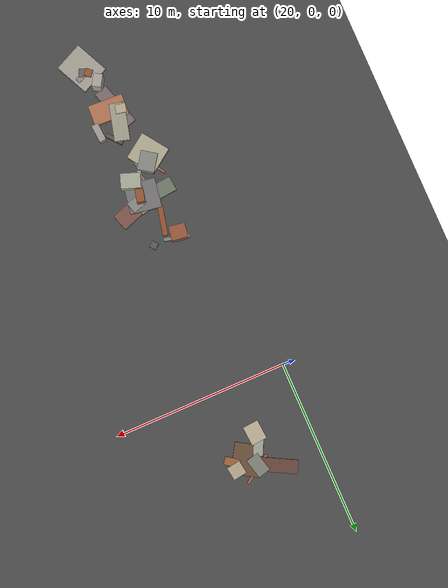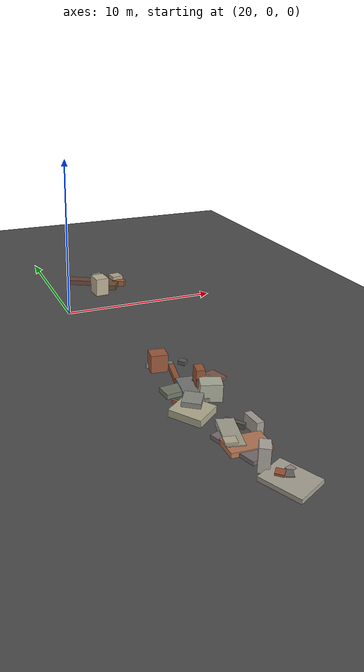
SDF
<sdf version="1.6">
 <world name="navitas_arena">
  <model name="ground_plane">
   <static>true</static>
   <link name="link">
    <collision name="collision">
     <geometry><plane><normal>0 0 1</normal><size>400 400</size></plane></geometry>
     <surface><friction><ode><mu>0.800</mu><mu2>0.800</mu2></ode></friction></surface>
    </collision>
    <visual name="visual">
     <cast_shadows>false</cast_shadows>
     <geometry><plane><normal>0 0 1</normal><size>400 400</size></plane></geometry>
     <material>
      <specular>0.04 0.04 0.04 1</specular>
      <script>
       <uri>file://media/materials/scripts/navitas_asphalt.material</uri>
       <name>Navitas/RealArenaAsphalt</name>
      </script>
     </material>
    </visual>
   </link>
  </model>
  <model name="deb_orta_39">
   <static>true</static>
   <pose>23.597 -12.655 0.000 0 0 0</pose>
   <link name="link">
    <collision name="col_0">
     <pose>0.428 0.245 0.134 0.000 0.000 2.014</pose>
     <geometry><box><size>0.477 0.325 0.269</size></box></geometry>
    </collision>
    <visual name="vis_0">
     <pose>0.428 0.245 0.134 0.000 0.000 2.014</pose>
     <geometry><box><size>0.477 0.325 0.269</size></box></geometry>
     <material>
      <ambient>0.51 0.51 0.46 1</ambient>
      <diffuse>0.55 0.55 0.49 1</diffuse>
      <specular>0.05 0.05 0.045 1</specular>
     </material>
    </visual>
    <collision name="col_1">
     <pose>0.248 0.438 0.072 0.000 0.000 1.306</pose>
     <geometry><box><size>1.709 0.137 0.143</size></box></geometry>
    </collision>
    <visual name="vis_1">
     <pose>0.248 0.438 0.072 0.000 0.000 1.306</pose>
     <geometry><box><size>1.709 0.137 0.143</size></box></geometry>
     <material>
      <ambient>0.57 0.54 0.50 1</ambient>
      <diffuse>0.61 0.58 0.54 1</diffuse>
      <specular>0.05 0.05 0.045 1</specular>
     </material>
    </visual>
    <collision name="col_2">
     <pose>-0.170 0.300 0.094 0.000 0.000 0.268</pose>
     <geometry><box><size>0.270 0.322 0.188</size></box></geometry>
    </collision>
    <visual name="vis_2">
     <pose>-0.170 0.300 0.094 0.000 0.000 0.268</pose>
     <geometry><box><size>0.270 0.322 0.188</size></box></geometry>
     <material>
      <ambient>0.60 0.58 0.57 1</ambient>
      <diffuse>0.65 0.63 0.62 1</diffuse>
      <specular>0.05 0.05 0.045 1</specular>
     </material>
    </visual>
    <collision name="col_3">
     <pose>0.114 -0.011 0.463 0.000 0.000 -0.344</pose>
     <geometry><box><size>1.122 0.852 0.926</size></box></geometry>
    </collision>
    <visual name="vis_3">
     <pose>0.114 -0.011 0.463 0.000 0.000 -0.344</pose>
     <geometry><box><size>1.122 0.852 0.926</size></box></geometry>
     <material>
      <ambient>0.62 0.63 0.56 1</ambient>
      <diffuse>0.67 0.68 0.61 1</diffuse>
      <specular>0.05 0.05 0.045 1</specular>
     </material>
    </visual>
    <collision name="col_4">
     <pose>0.326 -0.053 0.100 0.000 0.000 -0.215</pose>
     <geometry><box><size>0.267 0.334 0.199</size></box></geometry>
    </collision>
    <visual name="vis_4">
     <pose>0.326 -0.053 0.100 0.000 0.000 -0.215</pose>
     <geometry><box><size>0.267 0.334 0.199</size></box></geometry>
     <material>
      <ambient>0.54 0.53 0.50 1</ambient>
      <diffuse>0.59 0.57 0.54 1</diffuse>
      <specular>0.05 0.05 0.045 1</specular>
     </material>
    </visual>
    <collision name="col_5">
     <pose>-0.103 0.261 0.392 0.000 0.000 1.669</pose>
     <geometry><box><size>0.965 0.364 0.784</size></box></geometry>
    </collision>
    <visual name="vis_5">
     <pose>-0.103 0.261 0.392 0.000 0.000 1.669</pose>
     <geometry><box><size>0.965 0.364 0.784</size></box></geometry>
     <material>
      <ambient>0.58 0.33 0.22 1</ambient>
      <diffuse>0.63 0.36 0.24 1</diffuse>
      <specular>0.05 0.05 0.045 1</specular>
     </material>
    </visual>
    <collision name="col_6">
     <pose>-0.318 0.272 0.153 0.000 0.000 1.241</pose>
     <geometry><box><size>2.120 0.228 0.306</size></box></geometry>
    </collision>
    <visual name="vis_6">
     <pose>-0.318 0.272 0.153 0.000 0.000 1.241</pose>
     <geometry><box><size>2.120 0.228 0.306</size></box></geometry>
     <material>
      <ambient>0.63 0.59 0.57 1</ambient>
      <diffuse>0.68 0.63 0.61 1</diffuse>
      <specular>0.05 0.05 0.045 1</specular>
     </material>
    </visual>
   </link>
  </model>
  <model name="deb_orta_69">
   <static>true</static>
   <pose>23.229 -8.551 0.000 0 0 0</pose>
   <link name="link">
    <collision name="col_0">
     <pose>0.712 -0.380 0.112 0.000 0.000 2.244</pose>
     <geometry><box><size>0.399 0.384 0.225</size></box></geometry>
    </collision>
    <visual name="vis_0">
     <pose>0.712 -0.380 0.112 0.000 0.000 2.244</pose>
     <geometry><box><size>0.399 0.384 0.225</size></box></geometry>
     <material>
      <ambient>0.32 0.33 0.32 1</ambient>
      <diffuse>0.35 0.36 0.35 1</diffuse>
      <specular>0.05 0.05 0.045 1</specular>
     </material>
    </visual>
    <collision name="col_1">
     <pose>-0.537 -0.732 0.069 0.000 0.000 0.816</pose>
     <geometry><box><size>0.186 0.189 0.138</size></box></geometry>
    </collision>
    <visual name="vis_1">
     <pose>-0.537 -0.732 0.069 0.000 0.000 0.816</pose>
     <geometry><box><size>0.186 0.189 0.138</size></box></geometry>
     <material>
      <ambient>0.59 0.58 0.51 1</ambient>
      <diffuse>0.63 0.63 0.55 1</diffuse>
      <specular>0.05 0.05 0.045 1</specular>
     </material>
    </visual>
    <collision name="col_2">
     <pose>-0.627 -0.257 0.125 0.000 0.000 -0.249</pose>
     <geometry><box><size>1.473 0.198 0.249</size></box></geometry>
    </collision>
    <visual name="vis_2">
     <pose>-0.627 -0.257 0.125 0.000 0.000 -0.249</pose>
     <geometry><box><size>1.473 0.198 0.249</size></box></geometry>
     <material>
      <ambient>0.47 0.49 0.46 1</ambient>
      <diffuse>0.50 0.53 0.50 1</diffuse>
      <specular>0.05 0.05 0.045 1</specular>
     </material>
    </visual>
    <collision name="col_3">
     <pose>-0.810 -0.446 0.499 0.000 0.000 -0.142</pose>
     <geometry><box><size>0.926 0.819 0.998</size></box></geometry>
    </collision>
    <visual name="vis_3">
     <pose>-0.810 -0.446 0.499 0.000 0.000 -0.142</pose>
     <geometry><box><size>0.926 0.819 0.998</size></box></geometry>
     <material>
      <ambient>0.57 0.33 0.22 1</ambient>
      <diffuse>0.61 0.35 0.24 1</diffuse>
      <specular>0.05 0.05 0.045 1</specular>
     </material>
    </visual>
   </link>
  </model>
  <model name="deb_orta_94">
   <static>true</static>
   <pose>23.787 3.730 0.000 0 0 0</pose>
   <link name="link">
    <collision name="col_0">
     <pose>-0.807 -0.926 0.599 0.000 0.000 1.651</pose>
     <geometry><box><size>1.073 0.897 1.197</size></box></geometry>
    </collision>
    <visual name="vis_0">
     <pose>-0.807 -0.926 0.599 0.000 0.000 1.651</pose>
     <geometry><box><size>1.073 0.897 1.197</size></box></geometry>
     <material>
      <ambient>0.68 0.64 0.55 1</ambient>
      <diffuse>0.74 0.69 0.59 1</diffuse>
      <specular>0.05 0.05 0.045 1</specular>
     </material>
    </visual>
    <collision name="col_1">
     <pose>-0.191 0.960 0.109 0.000 0.000 3.309</pose>
     <geometry><box><size>0.515 0.438 0.218</size></box></geometry>
    </collision>
    <visual name="vis_1">
     <pose>-0.191 0.960 0.109 0.000 0.000 3.309</pose>
     <geometry><box><size>0.515 0.438 0.218</size></box></geometry>
     <material>
      <ambient>0.37 0.24 0.19 1</ambient>
      <diffuse>0.39 0.26 0.20 1</diffuse>
      <specular>0.05 0.05 0.045 1</specular>
     </material>
    </visual>
    <collision name="col_2">
     <pose>0.964 0.084 0.188 0.000 0.000 2.507</pose>
     <geometry><box><size>0.872 0.454 0.377</size></box></geometry>
    </collision>
    <visual name="vis_2">
     <pose>0.964 0.084 0.188 0.000 0.000 2.507</pose>
     <geometry><box><size>0.872 0.454 0.377</size></box></geometry>
     <material>
      <ambient>0.58 0.36 0.22 1</ambient>
      <diffuse>0.63 0.39 0.23 1</diffuse>
      <specular>0.05 0.05 0.045 1</specular>
     </material>
    </visual>
    <collision name="col_3">
     <pose>0.911 0.588 0.300 0.000 0.000 1.721</pose>
     <geometry><box><size>0.755 0.789 0.599</size></box></geometry>
    </collision>
    <visual name="vis_3">
     <pose>0.911 0.588 0.300 0.000 0.000 1.721</pose>
     <geometry><box><size>0.755 0.789 0.599</size></box></geometry>
     <material>
      <ambient>0.66 0.61 0.50 1</ambient>
      <diffuse>0.71 0.66 0.55 1</diffuse>
      <specular>0.05 0.05 0.045 1</specular>
     </material>
    </visual>
   </link>
  </model>
  <model name="deb_orta_97">
   <static>true</static>
   <pose>23.281 3.973 0.000 0 0 0</pose>
   <link name="link">
    <collision name="col_0">
     <pose>-0.176 -0.362 0.326 0.000 0.000 2.679</pose>
     <geometry><box><size>0.541 0.985 0.653</size></box></geometry>
    </collision>
    <visual name="vis_0">
     <pose>-0.176 -0.362 0.326 0.000 0.000 2.679</pose>
     <geometry><box><size>0.541 0.985 0.653</size></box></geometry>
     <material>
      <ambient>0.59 0.59 0.55 1</ambient>
      <diffuse>0.64 0.64 0.60 1</diffuse>
      <specular>0.05 0.05 0.045 1</specular>
     </material>
    </visual>
    <collision name="col_1">
     <pose>0.350 0.742 0.144 0.000 0.000 3.732</pose>
     <geometry><box><size>1.885 0.137 0.287</size></box></geometry>
    </collision>
    <visual name="vis_1">
     <pose>0.350 0.742 0.144 0.000 0.000 3.732</pose>
     <geometry><box><size>1.885 0.137 0.287</size></box></geometry>
     <material>
      <ambient>0.61 0.36 0.25 1</ambient>
      <diffuse>0.66 0.39 0.27 1</diffuse>
      <specular>0.05 0.05 0.045 1</specular>
     </material>
    </visual>
    <collision name="col_2">
     <pose>-0.493 0.863 0.164 0.000 0.000 2.651</pose>
     <geometry><box><size>2.844 0.774 0.328</size></box></geometry>
    </collision>
    <visual name="vis_2">
     <pose>-0.493 0.863 0.164 0.000 0.000 2.651</pose>
     <geometry><box><size>2.844 0.774 0.328</size></box></geometry>
     <material>
      <ambient>0.38 0.25 0.22 1</ambient>
      <diffuse>0.41 0.27 0.24 1</diffuse>
      <specular>0.05 0.05 0.045 1</specular>
     </material>
    </visual>
    <collision name="col_3">
     <pose>0.660 0.044 0.172 0.000 0.000 2.584</pose>
     <geometry><box><size>1.597 1.748 0.345</size></box></geometry>
    </collision>
    <visual name="vis_3">
     <pose>0.660 0.044 0.172 0.000 0.000 2.584</pose>
     <geometry><box><size>1.597 1.748 0.345</size></box></geometry>
     <material>
      <ambient>0.39 0.29 0.20 1</ambient>
      <diffuse>0.42 0.31 0.22 1</diffuse>
      <specular>0.05 0.05 0.045 1</specular>
     </material>
    </visual>
    <collision name="col_4">
     <pose>0.222 0.544 0.331 0.000 0.000 1.818</pose>
     <geometry><box><size>1.128 0.741 0.661</size></box></geometry>
    </collision>
    <visual name="vis_4">
     <pose>0.222 0.544 0.331 0.000 0.000 1.818</pose>
     <geometry><box><size>1.128 0.741 0.661</size></box></geometry>
     <material>
      <ambient>0.46 0.47 0.42 1</ambient>
      <diffuse>0.50 0.51 0.46 1</diffuse>
      <specular>0.05 0.05 0.045 1</specular>
     </material>
    </visual>
    <collision name="col_5">
     <pose>0.704 0.202 0.079 0.000 0.000 1.562</pose>
     <geometry><box><size>1.562 0.158 0.158</size></box></geometry>
    </collision>
    <visual name="vis_5">
     <pose>0.704 0.202 0.079 0.000 0.000 1.562</pose>
     <geometry><box><size>1.562 0.158 0.158</size></box></geometry>
     <material>
      <ambient>0.52 0.52 0.47 1</ambient>
      <diffuse>0.56 0.56 0.51 1</diffuse>
      <specular>0.05 0.05 0.045 1</specular>
     </material>
    </visual>
   </link>
  </model>
  <model name="deb_orta_100">
   <static>true</static>
   <pose>23.156 -11.095 0.000 0 0 0</pose>
   <link name="link">
    <collision name="col_0">
     <pose>0.725 -0.344 0.176 0.000 0.000 0.298</pose>
     <geometry><box><size>0.888 0.660 0.352</size></box></geometry>
    </collision>
    <visual name="vis_0">
     <pose>0.725 -0.344 0.176 0.000 0.000 0.298</pose>
     <geometry><box><size>0.888 0.660 0.352</size></box></geometry>
     <material>
      <ambient>0.51 0.50 0.48 1</ambient>
      <diffuse>0.55 0.54 0.52 1</diffuse>
      <specular>0.05 0.05 0.045 1</specular>
     </material>
    </visual>
    <collision name="col_1">
     <pose>0.289 -0.840 0.107 0.000 0.000 1.799</pose>
     <geometry><box><size>2.162 1.295 0.214</size></box></geometry>
    </collision>
    <visual name="vis_1">
     <pose>0.289 -0.840 0.107 0.000 0.000 1.799</pose>
     <geometry><box><size>2.162 1.295 0.214</size></box></geometry>
     <material>
      <ambient>0.48 0.46 0.43 1</ambient>
      <diffuse>0.52 0.50 0.46 1</diffuse>
      <specular>0.05 0.05 0.045 1</specular>
     </material>
    </visual>
    <collision name="col_2">
     <pose>-0.355 -0.491 0.131 0.000 0.000 0.096</pose>
     <geometry><box><size>2.451 0.845 0.262</size></box></geometry>
    </collision>
    <visual name="vis_2">
     <pose>-0.355 -0.491 0.131 0.000 0.000 0.096</pose>
     <geometry><box><size>2.451 0.845 0.262</size></box></geometry>
     <material>
      <ambient>0.41 0.44 0.38 1</ambient>
      <diffuse>0.44 0.48 0.41 1</diffuse>
      <specular>0.05 0.05 0.045 1</specular>
     </material>
    </visual>
    <collision name="col_3">
     <pose>-0.218 1.058 0.128 0.000 0.000 1.354</pose>
     <geometry><box><size>1.769 0.299 0.255</size></box></geometry>
    </collision>
    <visual name="vis_3">
     <pose>-0.218 1.058 0.128 0.000 0.000 1.354</pose>
     <geometry><box><size>1.769 0.299 0.255</size></box></geometry>
     <material>
      <ambient>0.55 0.29 0.18 1</ambient>
      <diffuse>0.59 0.32 0.19 1</diffuse>
      <specular>0.05 0.05 0.045 1</specular>
     </material>
    </visual>
    <collision name="col_4">
     <pose>0.406 -0.568 0.606 0.000 0.000 1.354</pose>
     <geometry><box><size>0.733 0.463 1.213</size></box></geometry>
    </collision>
    <visual name="vis_4">
     <pose>0.406 -0.568 0.606 0.000 0.000 1.354</pose>
     <geometry><box><size>0.733 0.463 1.213</size></box></geometry>
     <material>
      <ambient>0.55 0.31 0.19 1</ambient>
      <diffuse>0.59 0.34 0.21 1</diffuse>
      <specular>0.05 0.05 0.045 1</specular>
     </material>
    </visual>
    <collision name="col_5">
     <pose>1.073 -0.079 0.081 0.000 0.000 0.334</pose>
     <geometry><box><size>2.081 0.991 0.161</size></box></geometry>
    </collision>
    <visual name="vis_5">
     <pose>1.073 -0.079 0.081 0.000 0.000 0.334</pose>
     <geometry><box><size>2.081 0.991 0.161</size></box></geometry>
     <material>
      <ambient>0.46 0.31 0.27 1</ambient>
      <diffuse>0.50 0.34 0.29 1</diffuse>
      <specular>0.05 0.05 0.045 1</specular>
     </material>
    </visual>
    <collision name="col_6">
     <pose>0.274 -0.604 0.152 0.000 0.000 1.412</pose>
     <geometry><box><size>1.681 1.796 0.304</size></box></geometry>
    </collision>
    <visual name="vis_6">
     <pose>0.274 -0.604 0.152 0.000 0.000 1.412</pose>
     <geometry><box><size>1.681 1.796 0.304</size></box></geometry>
     <material>
      <ambient>0.43 0.43 0.42 1</ambient>
      <diffuse>0.47 0.46 0.46 1</diffuse>
      <specular>0.05 0.05 0.045 1</specular>
     </material>
    </visual>
   </link>
  </model>
  <model name="deb_orta_106">
   <static>true</static>
   <pose>23.668 -19.369 0.000 0 0 0</pose>
   <link name="link">
    <collision name="col_0">
     <pose>0.038 -0.333 0.111 0.000 0.000 2.012</pose>
     <geometry><box><size>2.052 1.736 0.221</size></box></geometry>
    </collision>
    <visual name="vis_0">
     <pose>0.038 -0.333 0.111 0.000 0.000 2.012</pose>
     <geometry><box><size>2.052 1.736 0.221</size></box></geometry>
     <material>
      <ambient>0.61 0.59 0.55 1</ambient>
      <diffuse>0.66 0.64 0.59 1</diffuse>
      <specular>0.05 0.05 0.045 1</specular>
     </material>
    </visual>
    <collision name="col_1">
     <pose>0.366 0.178 0.130 0.000 0.000 1.881</pose>
     <geometry><box><size>0.316 0.355 0.260</size></box></geometry>
    </collision>
    <visual name="vis_1">
     <pose>0.366 0.178 0.130 0.000 0.000 1.881</pose>
     <geometry><box><size>0.316 0.355 0.260</size></box></geometry>
     <material>
      <ambient>0.54 0.50 0.49 1</ambient>
      <diffuse>0.59 0.54 0.53 1</diffuse>
      <specular>0.05 0.05 0.045 1</specular>
     </material>
    </visual>
    <collision name="col_2">
     <pose>0.064 -0.066 0.132 0.000 0.000 2.750</pose>
     <geometry><box><size>0.500 0.471 0.264</size></box></geometry>
    </collision>
    <visual name="vis_2">
     <pose>0.064 -0.066 0.132 0.000 0.000 2.750</pose>
     <geometry><box><size>0.500 0.471 0.264</size></box></geometry>
     <material>
      <ambient>0.37 0.37 0.34 1</ambient>
      <diffuse>0.40 0.40 0.37 1</diffuse>
      <specular>0.05 0.05 0.045 1</specular>
     </material>
    </visual>
    <collision name="col_3">
     <pose>-0.487 0.851 0.596 0.000 0.000 2.595</pose>
     <geometry><box><size>0.519 0.737 1.193</size></box></geometry>
    </collision>
    <visual name="vis_3">
     <pose>-0.487 0.851 0.596 0.000 0.000 2.595</pose>
     <geometry><box><size>0.519 0.737 1.193</size></box></geometry>
     <material>
      <ambient>0.63 0.61 0.57 1</ambient>
      <diffuse>0.68 0.66 0.62 1</diffuse>
      <specular>0.05 0.05 0.045 1</specular>
     </material>
    </visual>
    <collision name="col_4">
     <pose>-0.215 0.052 0.165 0.000 0.000 3.990</pose>
     <geometry><box><size>0.423 0.412 0.330</size></box></geometry>
    </collision>
    <visual name="vis_4">
     <pose>-0.215 0.052 0.165 0.000 0.000 3.990</pose>
     <geometry><box><size>0.423 0.412 0.330</size></box></geometry>
     <material>
      <ambient>0.57 0.31 0.20 1</ambient>
      <diffuse>0.62 0.33 0.22 1</diffuse>
      <specular>0.05 0.05 0.045 1</specular>
     </material>
    </visual>
   </link>
  </model>
  <model name="deb_orta_166">
   <static>true</static>
   <pose>22.245 -13.481 0.000 0 0 0</pose>
   <link name="link">
    <collision name="col_0">
     <pose>0.104 0.130 0.096 0.000 0.000 2.153</pose>
     <geometry><box><size>2.161 0.123 0.191</size></box></geometry>
    </collision>
    <visual name="vis_0">
     <pose>0.104 0.130 0.096 0.000 0.000 2.153</pose>
     <geometry><box><size>2.161 0.123 0.191</size></box></geometry>
     <material>
      <ambient>0.63 0.37 0.31 1</ambient>
      <diffuse>0.68 0.40 0.33 1</diffuse>
      <specular>0.05 0.05 0.045 1</specular>
     </material>
    </visual>
    <collision name="col_1">
     <pose>-0.447 -0.020 0.083 0.000 0.000 0.210</pose>
     <geometry><box><size>0.373 0.438 0.166</size></box></geometry>
    </collision>
    <visual name="vis_1">
     <pose>-0.447 -0.020 0.083 0.000 0.000 0.210</pose>
     <geometry><box><size>0.373 0.438 0.166</size></box></geometry>
     <material>
      <ambient>0.50 0.50 0.49 1</ambient>
      <diffuse>0.54 0.54 0.52 1</diffuse>
      <specular>0.05 0.05 0.045 1</specular>
     </material>
    </visual>
    <collision name="col_2">
     <pose>0.518 -0.184 0.165 0.000 0.000 1.133</pose>
     <geometry><box><size>0.415 0.334 0.329</size></box></geometry>
    </collision>
    <visual name="vis_2">
     <pose>0.518 -0.184 0.165 0.000 0.000 1.133</pose>
     <geometry><box><size>0.415 0.334 0.329</size></box></geometry>
     <material>
      <ambient>0.43 0.33 0.26 1</ambient>
      <diffuse>0.47 0.36 0.28 1</diffuse>
      <specular>0.05 0.05 0.045 1</specular>
     </material>
    </visual>
    <collision name="col_3">
     <pose>-0.046 -0.299 0.190 0.000 0.000 0.612</pose>
     <geometry><box><size>1.615 1.739 0.380</size></box></geometry>
    </collision>
    <visual name="vis_3">
     <pose>-0.046 -0.299 0.190 0.000 0.000 0.612</pose>
     <geometry><box><size>1.615 1.739 0.380</size></box></geometry>
     <material>
      <ambient>0.65 0.63 0.53 1</ambient>
      <diffuse>0.70 0.68 0.57 1</diffuse>
      <specular>0.05 0.05 0.045 1</specular>
     </material>
    </visual>
    <collision name="col_4">
     <pose>0.167 0.148 0.321 0.000 0.000 0.965</pose>
     <geometry><box><size>1.097 0.957 0.642</size></box></geometry>
    </collision>
    <visual name="vis_4">
     <pose>0.167 0.148 0.321 0.000 0.000 0.965</pose>
     <geometry><box><size>1.097 0.957 0.642</size></box></geometry>
     <material>
      <ambient>0.51 0.51 0.48 1</ambient>
      <diffuse>0.55 0.55 0.52 1</diffuse>
      <specular>0.05 0.05 0.045 1</specular>
     </material>
    </visual>
    <collision name="col_5">
     <pose>0.074 -0.507 0.155 0.000 0.000 2.565</pose>
     <geometry><box><size>0.401 0.300 0.310</size></box></geometry>
    </collision>
    <visual name="vis_5">
     <pose>0.074 -0.507 0.155 0.000 0.000 2.565</pose>
     <geometry><box><size>0.401 0.300 0.310</size></box></geometry>
     <material>
      <ambient>0.51 0.53 0.50 1</ambient>
      <diffuse>0.55 0.57 0.53 1</diffuse>
      <specular>0.05 0.05 0.045 1</specular>
     </material>
    </visual>
    <collision name="col_6">
     <pose>0.264 -0.157 0.132 0.000 0.000 0.281</pose>
     <geometry><box><size>1.238 0.272 0.265</size></box></geometry>
    </collision>
    <visual name="vis_6">
     <pose>0.264 -0.157 0.132 0.000 0.000 0.281</pose>
     <geometry><box><size>1.238 0.272 0.265</size></box></geometry>
     <material>
      <ambient>0.53 0.51 0.48 1</ambient>
      <diffuse>0.57 0.55 0.52 1</diffuse>
      <specular>0.05 0.05 0.045 1</specular>
     </material>
    </visual>
   </link>
  </model>
  <model name="deb_orta_214">
   <static>true</static>
   <pose>23.481 -16.441 0.000 0 0 0</pose>
   <link name="link">
    <collision name="col_0">
     <pose>0.780 0.557 0.331 0.000 0.000 1.641</pose>
     <geometry><box><size>1.016 0.393 0.661</size></box></geometry>
    </collision>
    <visual name="vis_0">
     <pose>0.780 0.557 0.331 0.000 0.000 1.641</pose>
     <geometry><box><size>1.016 0.393 0.661</size></box></geometry>
     <material>
      <ambient>0.60 0.58 0.55 1</ambient>
      <diffuse>0.65 0.62 0.59 1</diffuse>
      <specular>0.05 0.05 0.045 1</specular>
     </material>
    </visual>
    <collision name="col_1">
     <pose>0.121 1.131 0.133 0.000 0.000 2.262</pose>
     <geometry><box><size>1.044 0.235 0.266</size></box></geometry>
    </collision>
    <visual name="vis_1">
     <pose>0.121 1.131 0.133 0.000 0.000 2.262</pose>
     <geometry><box><size>1.044 0.235 0.266</size></box></geometry>
     <material>
      <ambient>0.33 0.33 0.28 1</ambient>
      <diffuse>0.35 0.35 0.31 1</diffuse>
      <specular>0.05 0.05 0.045 1</specular>
     </material>
    </visual>
    <collision name="col_2">
     <pose>-0.219 -0.494 0.128 0.000 0.000 3.096</pose>
     <geometry><box><size>2.020 1.185 0.256</size></box></geometry>
    </collision>
    <visual name="vis_2">
     <pose>-0.219 -0.494 0.128 0.000 0.000 3.096</pose>
     <geometry><box><size>2.020 1.185 0.256</size></box></geometry>
     <material>
      <ambient>0.66 0.43 0.31 1</ambient>
      <diffuse>0.71 0.47 0.33 1</diffuse>
      <specular>0.05 0.05 0.045 1</specular>
     </material>
    </visual>
    <collision name="col_3">
     <pose>-0.629 -0.485 0.098 0.000 0.000 1.877</pose>
     <geometry><box><size>2.553 0.797 0.197</size></box></geometry>
    </collision>
    <visual name="vis_3">
     <pose>-0.629 -0.485 0.098 0.000 0.000 1.877</pose>
     <geometry><box><size>2.553 0.797 0.197</size></box></geometry>
     <material>
      <ambient>0.44 0.39 0.40 1</ambient>
      <diffuse>0.48 0.43 0.44 1</diffuse>
      <specular>0.05 0.05 0.045 1</specular>
     </material>
    </visual>
    <collision name="col_4">
     <pose>-0.522 0.377 0.153 0.000 0.000 1.318</pose>
     <geometry><box><size>2.152 0.875 0.305</size></box></geometry>
    </collision>
    <visual name="vis_4">
     <pose>-0.522 0.377 0.153 0.000 0.000 1.318</pose>
     <geometry><box><size>2.152 0.875 0.305</size></box></geometry>
     <material>
      <ambient>0.59 0.58 0.52 1</ambient>
      <diffuse>0.64 0.63 0.56 1</diffuse>
      <specular>0.05 0.05 0.045 1</specular>
     </material>
    </visual>
    <collision name="col_5">
     <pose>-1.011 -0.455 0.129 0.000 0.000 1.945</pose>
     <geometry><box><size>0.285 0.338 0.258</size></box></geometry>
    </collision>
    <visual name="vis_5">
     <pose>-1.011 -0.455 0.129 0.000 0.000 1.945</pose>
     <geometry><box><size>0.285 0.338 0.258</size></box></geometry>
     <material>
      <ambient>0.47 0.34 0.26 1</ambient>
      <diffuse>0.51 0.37 0.28 1</diffuse>
      <specular>0.05 0.05 0.045 1</specular>
     </material>
    </visual>
    <collision name="col_6">
     <pose>-0.880 -0.275 0.193 0.000 0.000 1.364</pose>
     <geometry><box><size>0.511 0.600 0.386</size></box></geometry>
    </collision>
    <visual name="vis_6">
     <pose>-0.880 -0.275 0.193 0.000 0.000 1.364</pose>
     <geometry><box><size>0.511 0.600 0.386</size></box></geometry>
     <material>
      <ambient>0.67 0.63 0.53 1</ambient>
      <diffuse>0.73 0.68 0.58 1</diffuse>
      <specular>0.05 0.05 0.045 1</specular>
     </material>
    </visual>
   </link>
  </model>
 </world>
</sdf>
